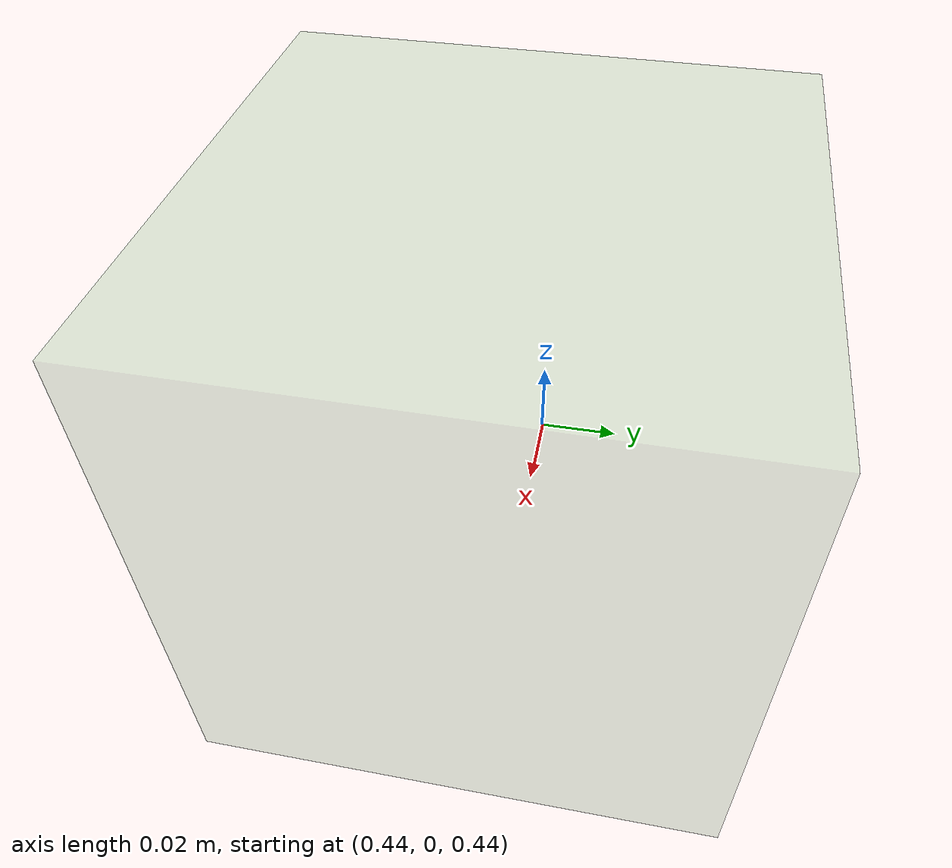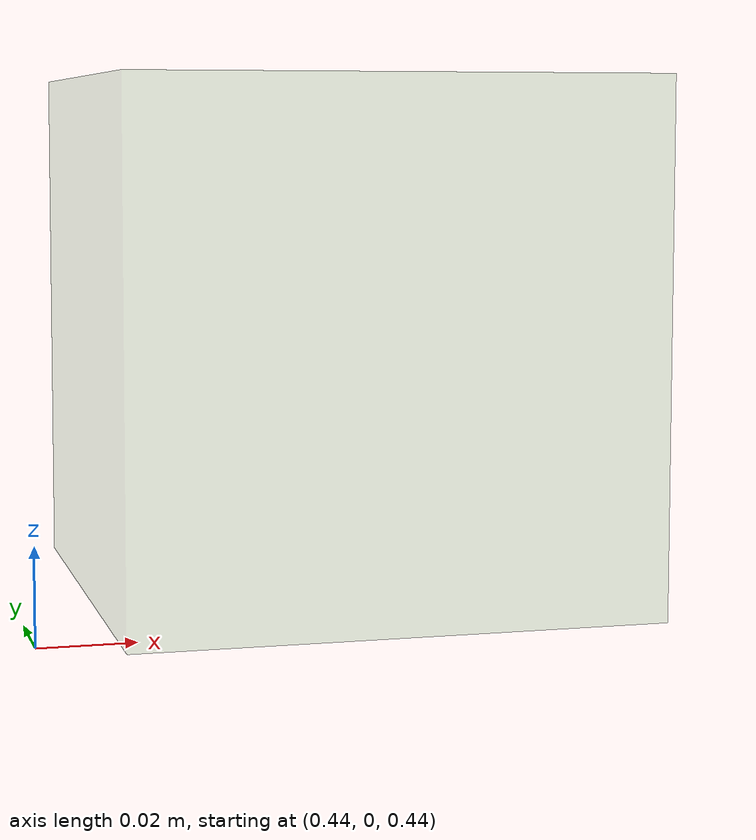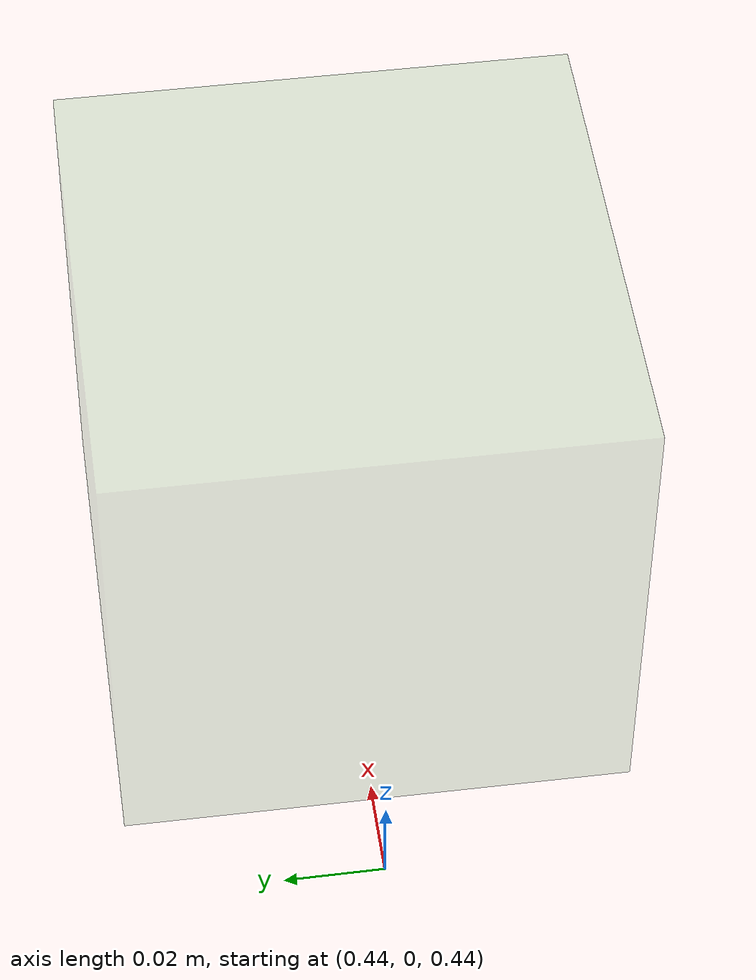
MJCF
<mujoco model="empty-scene">
  <visual>
    <headlight diffuse="0.6 0.6 0.6" ambient="0.3 0.3 0.3" specular="0 0 0"/>
    <rgba haze="0.15 0.25 0.35 1"/>
    <global azimuth="-121.0953" elevation="-33.5061"/>
  </visual>

  <asset>
    <texture type="2d" name="wood" file="wood.png"/>
    <material name="wood" texture="wood"/>
    <material name="object" rgba=".2 .2 .2 1"/>
    <texture type="skybox" builtin="gradient" rgb1="0.44 0.80 1.00" rgb2="1 1 1" width="512" height="3072"/>
    <material name="floor" rgba=".1 .1 .1 1" reflectance="0.1"/>

    <texture type="2d" name="groundplane" builtin="checker" mark="none" rgb1="1 1 1" rgb2="0.97 0.97 0.97" markrgb="0.8 0.8 0.8" width="300" height="300"/>
    <material name="groundplane" texture="groundplane" texuniform="true" texrepeat="5 5" rgba="0.7 0.7 0.7 1"/>
  </asset>

  <worldbody>
    <light pos="1 -1 1.5" dir="-1 1 -1" diffuse="0.5 0.5 0.5" directional="true"/>
    <geom name="floor" size="0 0 0.05" type="plane" material="groundplane"/>

    <body name="target" pos="0.5 0 0.5" quat="0 1 0 0" mocap="true">
      <geom type="box" size=".05 .05 .05" contype="0" conaffinity="0" rgba=".3 .6 .3 .2"/>
    </body>

  </worldbody>
</mujoco>
